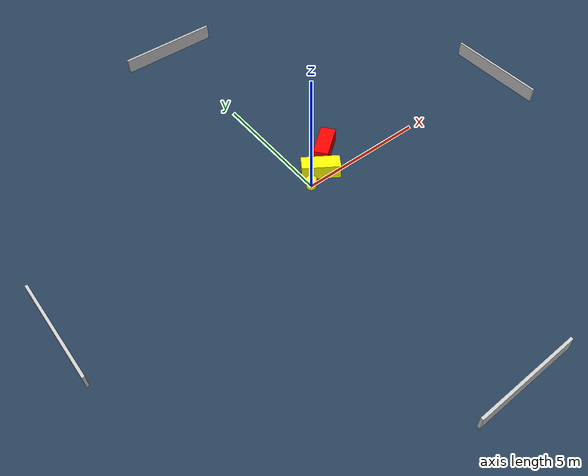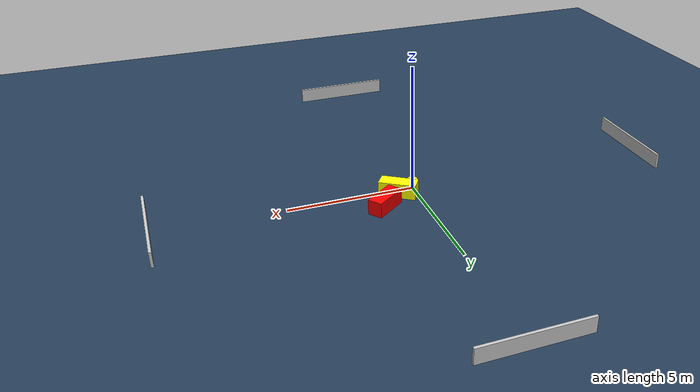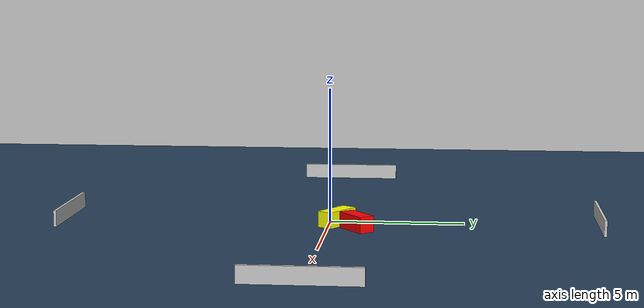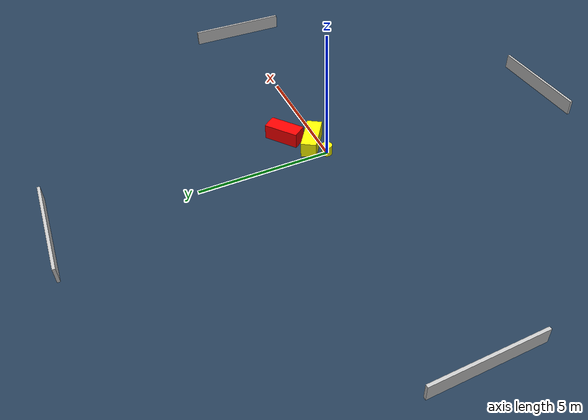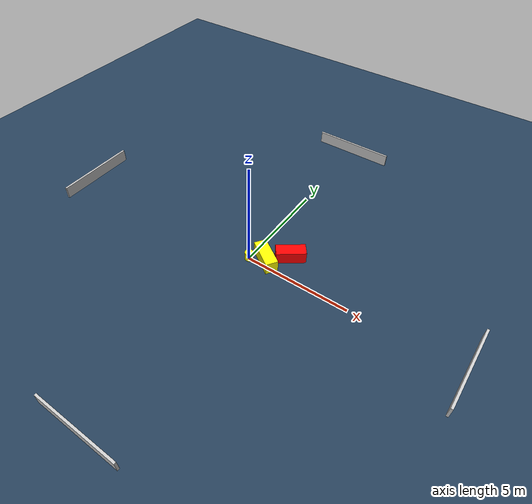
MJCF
<?xml version="1.0" ?>
<mujoco model="generated_environment">
  <option timestep="0.01" integrator="RK4" cone="elliptic"/>
  <default>
    <geom density="1"/>
  </default>
  <asset>
    <texture builtin="gradient" height="3072" name="skybox" rgb1="0.3 0.5 0.7" rgb2="0 0 0" type="skybox" width="512"/>
    <texture builtin="checker" height="300" name="groundplane" rgb1="0.2 0.3 0.4" rgb2="0.1 0.2 0.3" type="2d" width="300"/>
    <material name="groundplane" reflectance="0.2" texrepeat="5 5" texture="groundplane"/>
  </asset>
  <worldbody>
    <light dir="0 0 -1" directional="true" pos="0 0 1.5"/>
    <geom condim="3" friction="0.5 0.005 0.001" material="groundplane" name="floor" pos="0 0 0" size="0 0 0.05" type="plane"/>
    <body name="walls">
      <geom name="wall_1" condim="4" pos="-10.0 0.0 0.3" rgba="0.800000011920929 0.800000011920929 0.800000011920929 1.0" size="0.05 2.0 0.3" type="box"/>
      <geom name="wall_2" condim="4" pos="10.0 0.0 0.3" rgba="0.800000011920929 0.800000011920929 0.800000011920929 1.0" size="0.05 2.0 0.3" type="box"/>
      <geom name="wall_3" condim="4" pos="0.0 -10.0 0.3" rgba="0.800000011920929 0.800000011920929 0.800000011920929 1.0" size="2.0 0.05 0.3" type="box"/>
      <geom name="wall_4" condim="4" pos="0.0 10.0 0.3" rgba="0.800000011920929 0.800000011920929 0.800000011920929 1.0" size="2.0 0.05 0.3" type="box"/>
    </body>
    <body name="robot">
      <joint name="joint_x" type="slide" pos="0 0 0" axis="1 0 0"/>
      <joint name="joint_y" type="slide" pos="0 0 0" axis="0 1 0"/>
      <geom name="robot" type="cylinder" pos="0.0 0.0 0.2" size="0.2 0.2 0.0" mass="5.0" friction="1.0 0.005 0.0001" condim="4" rgba="1.0 1.0 0.0 1.0"/>
    </body>
    <body name="obstacle_1_movable">
      <geom name="obstacle_1_movable" condim="4" pos="0.695439432193583 0.3114989404328388 0.3" euler="0 0 326.0032518997202" friction="0.0 0.005 0.001" rgba="1.0 1.0 0.0 1.0" size="0.7323730001031481 0.2921207585734453 0.3" type="box" mass="0.1"/>
      <joint type="free"/>
    </body>
    <body name="obstacle_2_static">
      <geom name="obstacle_2_static" condim="4" pos="1.5159237827226837 1.0966281838182401 0.3" euler="0 0 37.40701355774978" friction="0.0 0.005 0.001" rgba="1.0 0.0 0.0 1.0" size="0.6821301961794565 0.293154824056061 0.3" type="box"/>
    </body>
  </worldbody>
  <actuator>
    <motor name="actuator_x" joint="joint_x" gear="1" ctrlrange="-1 1"/>
    <motor name="actuator_y" joint="joint_y" gear="1" ctrlrange="-1 1"/>
  </actuator>
</mujoco>
